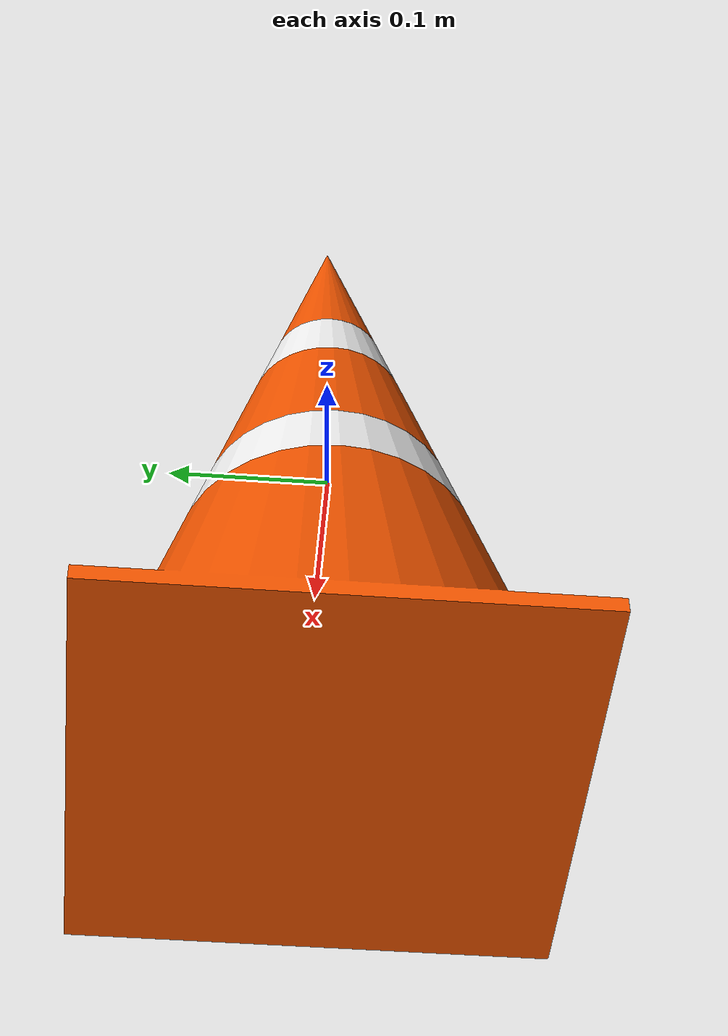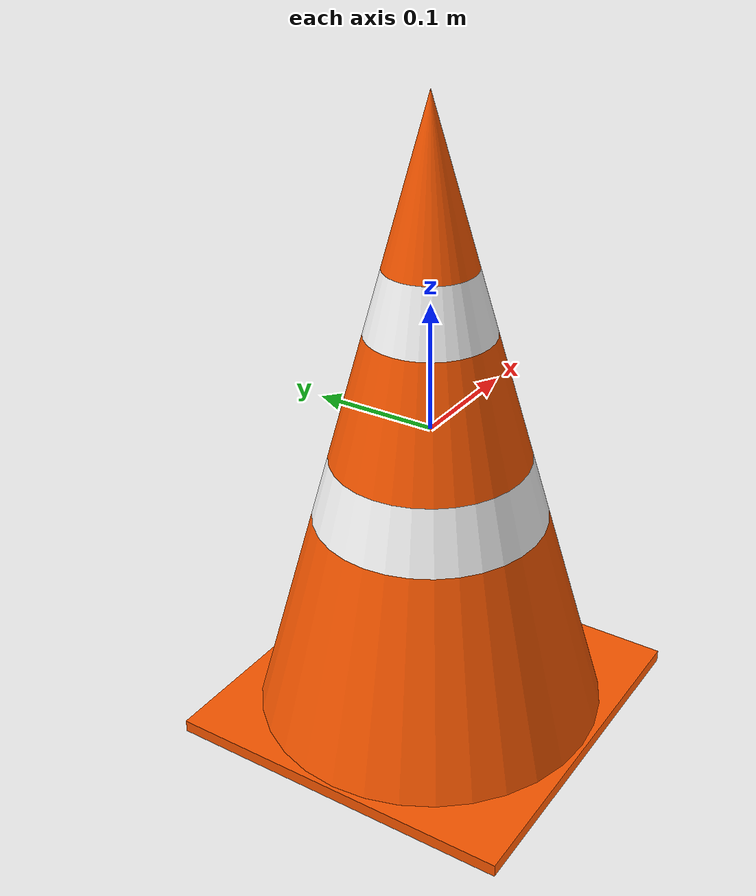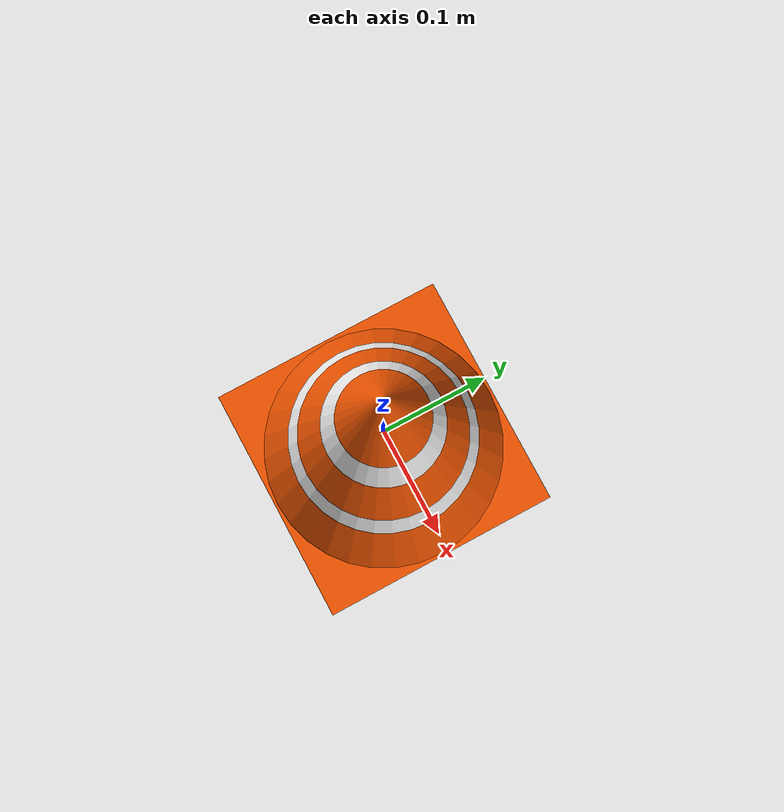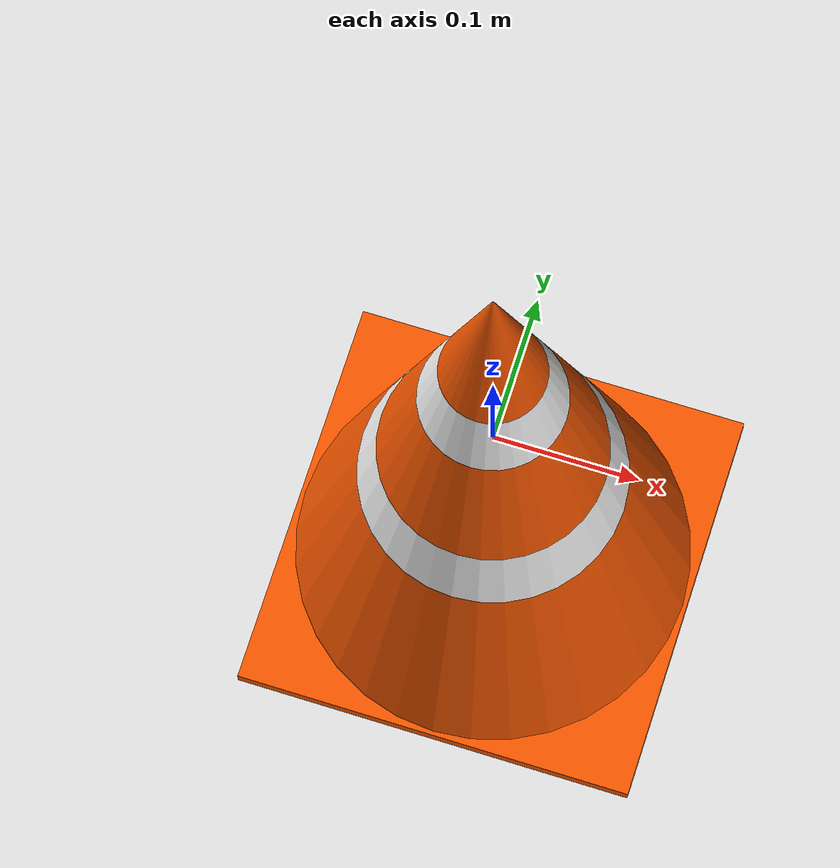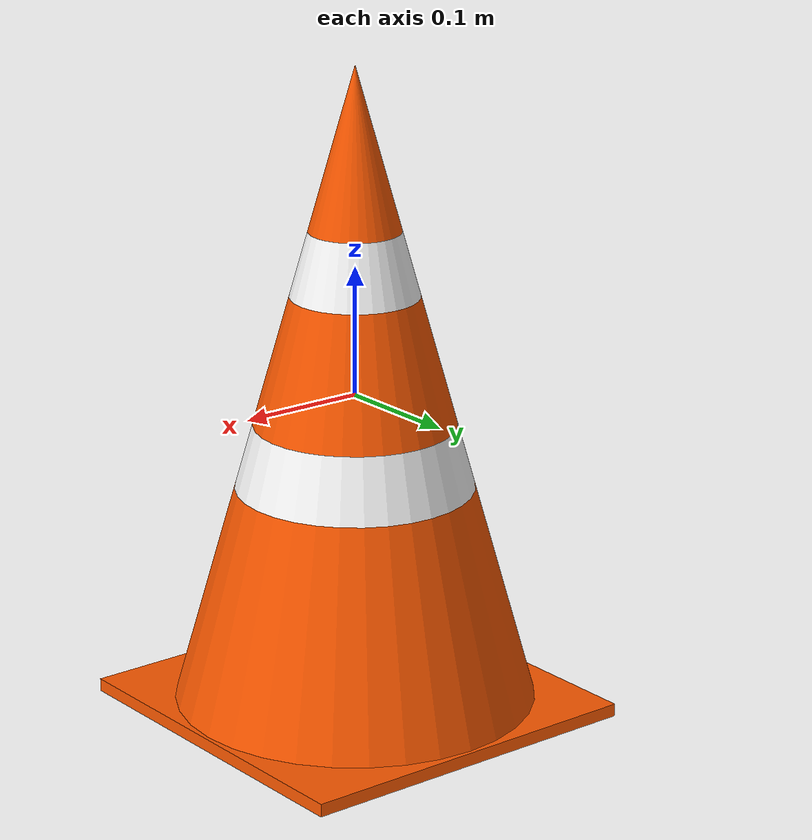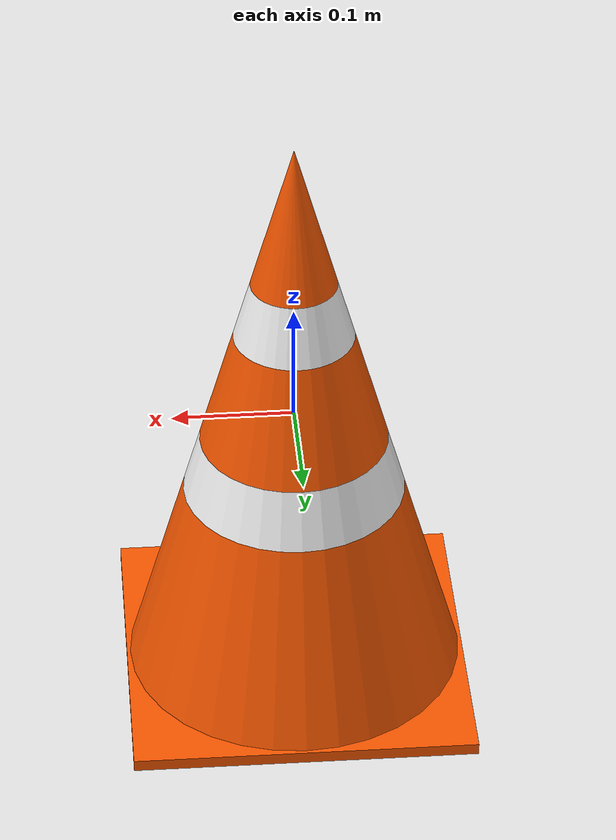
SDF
<?xml version="1.0" ?>
<sdf version="1.9">
  <model name="cone_orange_large">
    <static>true</static>
    <link name="link">
      <collision name="collision">
        <pose>0 0 -0.2525 0 0 0</pose>
        <geometry><mesh><uri>model://cone_orange_large/meshes/cone.stl</uri></mesh></geometry>
      </collision>
      <visual name="body">
        <pose>0 0 -0.2525 0 0 0</pose>
        <geometry><mesh><uri>model://cone_orange_large/meshes/body.stl</uri></mesh></geometry>
        <material><ambient>1.0 0.35 0.0 1</ambient><diffuse>1.0 0.35 0.0 1</diffuse></material>
      </visual>
      <visual name="stripe">
        <pose>0 0 -0.2525 0 0 0</pose>
        <geometry><mesh><uri>model://cone_orange_large/meshes/stripe.stl</uri></mesh></geometry>
        <material><ambient>1.0 1.0 1.0 1</ambient><diffuse>1.0 1.0 1.0 1</diffuse></material>
      </visual>
    </link>
  </model>
</sdf>
